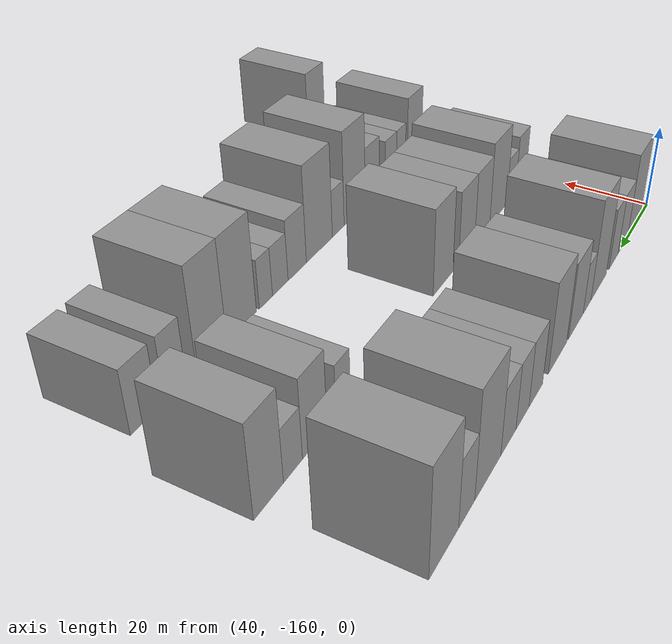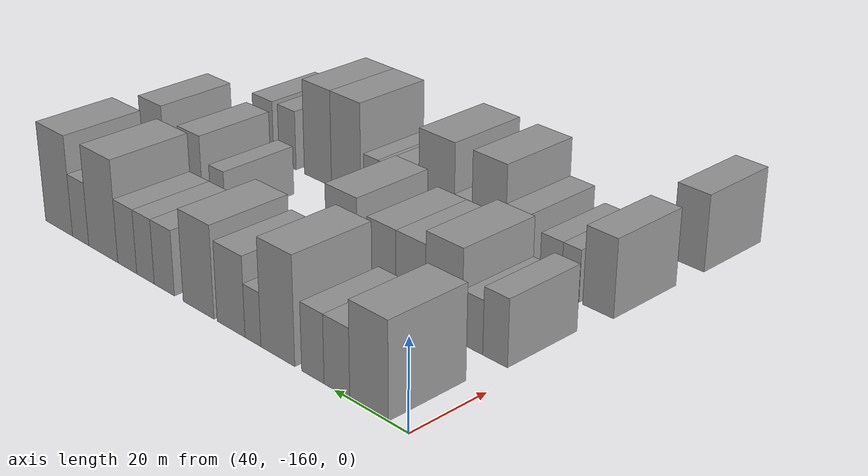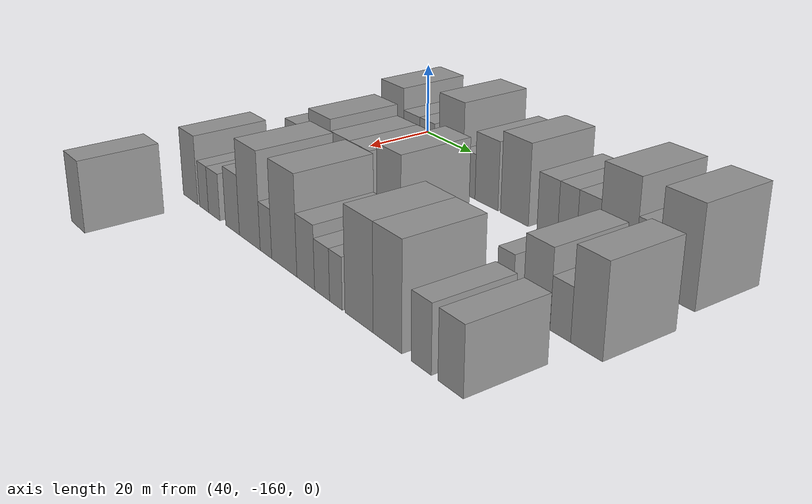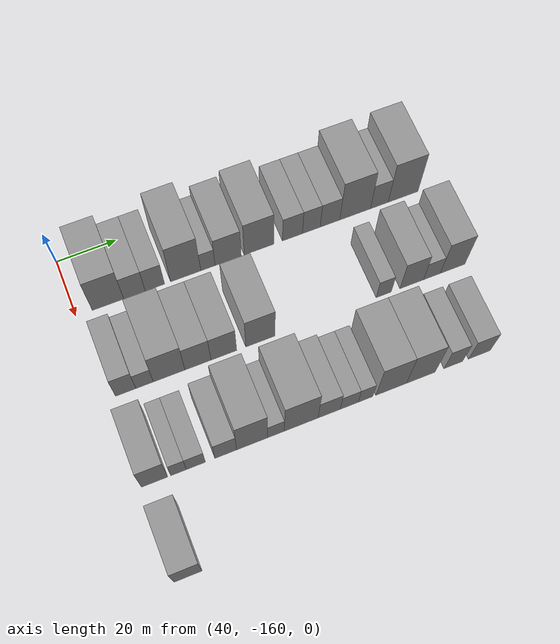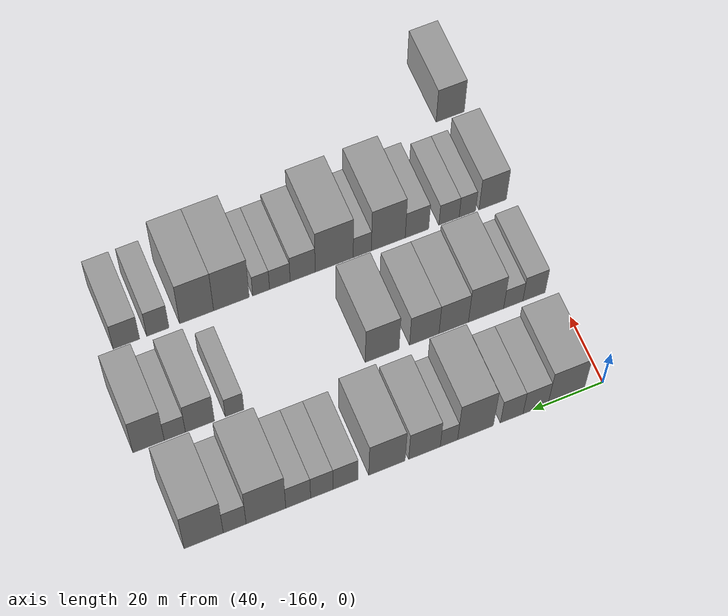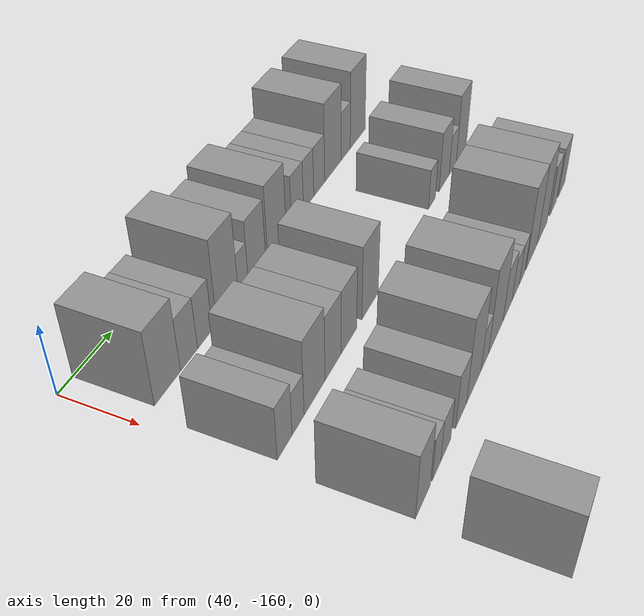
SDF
<sdf version="1.6">
 <world name="default">
  <model name="building_39">
   <static>1</static>
   <pose>50.0000 -149.4049 0 0.000000 0.000000 0.000000</pose>
   <link name="link">
    <pose>0 0 10.50 0 0 0</pose>
    <collision name="collision"><geometry><box><size>20.0000 10.3349 21.0000</size></box></geometry></collision>
    <visual name="visual">
     <cast_shadows>0</cast_shadows>
     <geometry><box><size>20.0000 10.3349 21.0000</size></box></geometry>
     <material>
      <script>
       <uri>model://grey_wall/materials/scripts</uri>
       <uri>model://grey_wall/materials/textures</uri>
       <name>vrc/grey_wall</name>
      </script>
     </material>
    </visual>
   </link>
  </model>
  <model name="building_40">
   <static>1</static>
   <pose>50.0000 -140.6643 0 0.000000 0.000000 0.000000</pose>
   <link name="link">
    <pose>0 0 7.50 0 0 0</pose>
    <collision name="collision"><geometry><box><size>20.0000 7.1463 15.0000</size></box></geometry></collision>
    <visual name="visual">
     <cast_shadows>0</cast_shadows>
     <geometry><box><size>20.0000 7.1463 15.0000</size></box></geometry>
     <material>
      <script>
       <uri>model://grey_wall/materials/scripts</uri>
       <uri>model://grey_wall/materials/textures</uri>
       <name>vrc/grey_wall</name>
      </script>
     </material>
    </visual>
   </link>
  </model>
  <model name="building_41">
   <static>1</static>
   <pose>50.0000 -133.8740 0 0.000000 0.000000 0.000000</pose>
   <link name="link">
    <pose>0 0 7.50 0 0 0</pose>
    <collision name="collision"><geometry><box><size>20.0000 6.4342 15.0000</size></box></geometry></collision>
    <visual name="visual">
     <cast_shadows>0</cast_shadows>
     <geometry><box><size>20.0000 6.4342 15.0000</size></box></geometry>
     <material>
      <script>
       <uri>model://grey_wall/materials/scripts</uri>
       <uri>model://grey_wall/materials/textures</uri>
       <name>vrc/grey_wall</name>
      </script>
     </material>
    </visual>
   </link>
  </model>
  <model name="building_42">
   <static>1</static>
   <pose>50.0000 -123.5805 0 0.000000 0.000000 0.000000</pose>
   <link name="link">
    <pose>0 0 12.00 0 0 0</pose>
    <collision name="collision"><geometry><box><size>20.0000 10.1528 24.0000</size></box></geometry></collision>
    <visual name="visual">
     <cast_shadows>0</cast_shadows>
     <geometry><box><size>20.0000 10.1528 24.0000</size></box></geometry>
     <material>
      <script>
       <uri>model://grey_wall/materials/scripts</uri>
       <uri>model://grey_wall/materials/textures</uri>
       <name>vrc/grey_wall</name>
      </script>
     </material>
    </visual>
   </link>
  </model>
  <model name="building_43">
   <static>1</static>
   <pose>50.0000 -116.0681 0 0.000000 0.000000 0.000000</pose>
   <link name="link">
    <pose>0 0 6.00 0 0 0</pose>
    <collision name="collision"><geometry><box><size>20.0000 4.8721 12.0000</size></box></geometry></collision>
    <visual name="visual">
     <cast_shadows>0</cast_shadows>
     <geometry><box><size>20.0000 4.8721 12.0000</size></box></geometry>
     <material>
      <script>
       <uri>model://grey_wall/materials/scripts</uri>
       <uri>model://grey_wall/materials/textures</uri>
       <name>vrc/grey_wall</name>
      </script>
     </material>
    </visual>
   </link>
  </model>
  <model name="building_44">
   <static>1</static>
   <pose>50.0000 -109.1987 0 0.000000 0.000000 0.000000</pose>
   <link name="link">
    <pose>0 0 9.00 0 0 0</pose>
    <collision name="collision"><geometry><box><size>20.0000 8.8667 18.0000</size></box></geometry></collision>
    <visual name="visual">
     <cast_shadows>0</cast_shadows>
     <geometry><box><size>20.0000 8.8667 18.0000</size></box></geometry>
     <material>
      <script>
       <uri>model://grey_wall/materials/scripts</uri>
       <uri>model://grey_wall/materials/textures</uri>
       <name>vrc/grey_wall</name>
      </script>
     </material>
    </visual>
   </link>
  </model>
  <model name="building_45">
   <static>1</static>
   <pose>50.0000 -98.6974 0 0.000000 0.000000 0.000000</pose>
   <link name="link">
    <pose>0 0 10.50 0 0 0</pose>
    <collision name="collision"><geometry><box><size>20.0000 10.1359 21.0000</size></box></geometry></collision>
    <visual name="visual">
     <cast_shadows>0</cast_shadows>
     <geometry><box><size>20.0000 10.1359 21.0000</size></box></geometry>
     <material>
      <script>
       <uri>model://grey_wall/materials/scripts</uri>
       <uri>model://grey_wall/materials/textures</uri>
       <name>vrc/grey_wall</name>
      </script>
     </material>
    </visual>
   </link>
  </model>
  <model name="building_46">
   <static>1</static>
   <pose>50.0000 -87.1655 0 0.000000 0.000000 0.000000</pose>
   <link name="link">
    <pose>0 0 7.50 0 0 0</pose>
    <collision name="collision"><geometry><box><size>20.0000 6.9278 15.0000</size></box></geometry></collision>
    <visual name="visual">
     <cast_shadows>0</cast_shadows>
     <geometry><box><size>20.0000 6.9278 15.0000</size></box></geometry>
     <material>
      <script>
       <uri>model://grey_wall/materials/scripts</uri>
       <uri>model://grey_wall/materials/textures</uri>
       <name>vrc/grey_wall</name>
      </script>
     </material>
    </visual>
   </link>
  </model>
  <model name="building_47">
   <static>1</static>
   <pose>50.0000 -80.6091 0 0.000000 0.000000 0.000000</pose>
   <link name="link">
    <pose>0 0 7.50 0 0 0</pose>
    <collision name="collision"><geometry><box><size>20.0000 6.1850 15.0000</size></box></geometry></collision>
    <visual name="visual">
     <cast_shadows>0</cast_shadows>
     <geometry><box><size>20.0000 6.1850 15.0000</size></box></geometry>
     <material>
      <script>
       <uri>model://grey_wall/materials/scripts</uri>
       <uri>model://grey_wall/materials/textures</uri>
       <name>vrc/grey_wall</name>
      </script>
     </material>
    </visual>
   </link>
  </model>
  <model name="building_48">
   <static>1</static>
   <pose>50.0000 -74.0983 0 0.000000 0.000000 0.000000</pose>
   <link name="link">
    <pose>0 0 7.50 0 0 0</pose>
    <collision name="collision"><geometry><box><size>20.0000 6.8367 15.0000</size></box></geometry></collision>
    <visual name="visual">
     <cast_shadows>0</cast_shadows>
     <geometry><box><size>20.0000 6.8367 15.0000</size></box></geometry>
     <material>
      <script>
       <uri>model://grey_wall/materials/scripts</uri>
       <uri>model://grey_wall/materials/textures</uri>
       <name>vrc/grey_wall</name>
      </script>
     </material>
    </visual>
   </link>
  </model>
  <model name="building_49">
   <static>1</static>
   <pose>50.0000 -65.2504 0 0.000000 0.000000 0.000000</pose>
   <link name="link">
    <pose>0 0 12.00 0 0 0</pose>
    <collision name="collision"><geometry><box><size>20.0000 10.8591 24.0000</size></box></geometry></collision>
    <visual name="visual">
     <cast_shadows>0</cast_shadows>
     <geometry><box><size>20.0000 10.8591 24.0000</size></box></geometry>
     <material>
      <script>
       <uri>model://grey_wall/materials/scripts</uri>
       <uri>model://grey_wall/materials/textures</uri>
       <name>vrc/grey_wall</name>
      </script>
     </material>
    </visual>
   </link>
  </model>
  <model name="building_50">
   <static>1</static>
   <pose>50.0000 -56.7006 0 0.000000 0.000000 0.000000</pose>
   <link name="link">
    <pose>0 0 7.50 0 0 0</pose>
    <collision name="collision"><geometry><box><size>20.0000 6.2407 15.0000</size></box></geometry></collision>
    <visual name="visual">
     <cast_shadows>0</cast_shadows>
     <geometry><box><size>20.0000 6.2407 15.0000</size></box></geometry>
     <material>
      <script>
       <uri>model://grey_wall/materials/scripts</uri>
       <uri>model://grey_wall/materials/textures</uri>
       <name>vrc/grey_wall</name>
      </script>
     </material>
    </visual>
   </link>
  </model>
  <model name="building_51">
   <static>1</static>
   <pose>50.0000 -48.2605 0 0.000000 0.000000 0.000000</pose>
   <link name="link">
    <pose>0 0 12.00 0 0 0</pose>
    <collision name="collision"><geometry><box><size>20.0000 10.6394 24.0000</size></box></geometry></collision>
    <visual name="visual">
     <cast_shadows>0</cast_shadows>
     <geometry><box><size>20.0000 10.6394 24.0000</size></box></geometry>
     <material>
      <script>
       <uri>model://grey_wall/materials/scripts</uri>
       <uri>model://grey_wall/materials/textures</uri>
       <name>vrc/grey_wall</name>
      </script>
     </material>
    </visual>
   </link>
  </model>
  <model name="building_153">
   <static>1</static>
   <pose>79.0000 -153.5303 0 0.000000 0.000000 0.000000</pose>
   <link name="link">
    <pose>0 0 7.50 0 0 0</pose>
    <collision name="collision"><geometry><box><size>20.0000 6.5317 15.0000</size></box></geometry></collision>
    <visual name="visual">
     <cast_shadows>0</cast_shadows>
     <geometry><box><size>20.0000 6.5317 15.0000</size></box></geometry>
     <material>
      <script>
       <uri>model://grey_wall/materials/scripts</uri>
       <uri>model://grey_wall/materials/textures</uri>
       <name>vrc/grey_wall</name>
      </script>
     </material>
    </visual>
   </link>
  </model>
  <model name="building_154">
   <static>1</static>
   <pose>79.0000 -147.4696 0 0.000000 0.000000 0.000000</pose>
   <link name="link">
    <pose>0 0 6.00 0 0 0</pose>
    <collision name="collision"><geometry><box><size>20.0000 5.5898 12.0000</size></box></geometry></collision>
    <visual name="visual">
     <cast_shadows>0</cast_shadows>
     <geometry><box><size>20.0000 5.5898 12.0000</size></box></geometry>
     <material>
      <script>
       <uri>model://grey_wall/materials/scripts</uri>
       <uri>model://grey_wall/materials/textures</uri>
       <name>vrc/grey_wall</name>
      </script>
     </material>
    </visual>
   </link>
  </model>
  <model name="building_155">
   <static>1</static>
   <pose>79.0000 -139.5721 0 0.000000 0.000000 0.000000</pose>
   <link name="link">
    <pose>0 0 10.50 0 0 0</pose>
    <collision name="collision"><geometry><box><size>20.0000 10.2052 21.0000</size></box></geometry></collision>
    <visual name="visual">
     <cast_shadows>0</cast_shadows>
     <geometry><box><size>20.0000 10.2052 21.0000</size></box></geometry>
     <material>
      <script>
       <uri>model://grey_wall/materials/scripts</uri>
       <uri>model://grey_wall/materials/textures</uri>
       <name>vrc/grey_wall</name>
      </script>
     </material>
    </visual>
   </link>
  </model>
  <model name="building_156">
   <static>1</static>
   <pose>79.0000 -130.2316 0 0.000000 0.000000 0.000000</pose>
   <link name="link">
    <pose>0 0 9.00 0 0 0</pose>
    <collision name="collision"><geometry><box><size>20.0000 8.4758 18.0000</size></box></geometry></collision>
    <visual name="visual">
     <cast_shadows>0</cast_shadows>
     <geometry><box><size>20.0000 8.4758 18.0000</size></box></geometry>
     <material>
      <script>
       <uri>model://grey_wall/materials/scripts</uri>
       <uri>model://grey_wall/materials/textures</uri>
       <name>vrc/grey_wall</name>
      </script>
     </material>
    </visual>
   </link>
  </model>
  <model name="building_157">
   <static>1</static>
   <pose>79.0000 -121.7674 0 0.000000 0.000000 0.000000</pose>
   <link name="link">
    <pose>0 0 9.00 0 0 0</pose>
    <collision name="collision"><geometry><box><size>20.0000 8.4525 18.0000</size></box></geometry></collision>
    <visual name="visual">
     <cast_shadows>0</cast_shadows>
     <geometry><box><size>20.0000 8.4525 18.0000</size></box></geometry>
     <material>
      <script>
       <uri>model://grey_wall/materials/scripts</uri>
       <uri>model://grey_wall/materials/textures</uri>
       <name>vrc/grey_wall</name>
      </script>
     </material>
    </visual>
   </link>
  </model>
  <model name="building_158">
   <static>1</static>
   <pose>79.0000 -109.7116 0 0.000000 0.000000 0.000000</pose>
   <link name="link">
    <pose>0 0 10.50 0 0 0</pose>
    <collision name="collision"><geometry><box><size>20.0000 9.6591 21.0000</size></box></geometry></collision>
    <visual name="visual">
     <cast_shadows>0</cast_shadows>
     <geometry><box><size>20.0000 9.6591 21.0000</size></box></geometry>
     <material>
      <script>
       <uri>model://grey_wall/materials/scripts</uri>
       <uri>model://grey_wall/materials/textures</uri>
       <name>vrc/grey_wall</name>
      </script>
     </material>
    </visual>
   </link>
  </model>
  <model name="building_159">
   <static>1</static>
   <pose>79.0000 -68.0960 0 0.000000 0.000000 0.000000</pose>
   <link name="link">
    <pose>0 0 6.00 0 0 0</pose>
    <collision name="collision"><geometry><box><size>20.0000 5.1907 12.0000</size></box></geometry></collision>
    <visual name="visual">
     <cast_shadows>0</cast_shadows>
     <geometry><box><size>20.0000 5.1907 12.0000</size></box></geometry>
     <material>
      <script>
       <uri>model://grey_wall/materials/scripts</uri>
       <uri>model://grey_wall/materials/textures</uri>
       <name>vrc/grey_wall</name>
      </script>
     </material>
    </visual>
   </link>
  </model>
  <model name="building_160">
   <static>1</static>
   <pose>79.0000 -58.4691 0 0.000000 0.000000 0.000000</pose>
   <link name="link">
    <pose>0 0 9.00 0 0 0</pose>
    <collision name="collision"><geometry><box><size>20.0000 8.0632 18.0000</size></box></geometry></collision>
    <visual name="visual">
     <cast_shadows>0</cast_shadows>
     <geometry><box><size>20.0000 8.0632 18.0000</size></box></geometry>
     <material>
      <script>
       <uri>model://grey_wall/materials/scripts</uri>
       <uri>model://grey_wall/materials/textures</uri>
       <name>vrc/grey_wall</name>
      </script>
     </material>
    </visual>
   </link>
  </model>
  <model name="building_161">
   <static>1</static>
   <pose>79.0000 -51.5164 0 0.000000 0.000000 0.000000</pose>
   <link name="link">
    <pose>0 0 6.00 0 0 0</pose>
    <collision name="collision"><geometry><box><size>20.0000 5.8422 12.0000</size></box></geometry></collision>
    <visual name="visual">
     <cast_shadows>0</cast_shadows>
     <geometry><box><size>20.0000 5.8422 12.0000</size></box></geometry>
     <material>
      <script>
       <uri>model://grey_wall/materials/scripts</uri>
       <uri>model://grey_wall/materials/textures</uri>
       <name>vrc/grey_wall</name>
      </script>
     </material>
    </visual>
   </link>
  </model>
  <model name="building_162">
   <static>1</static>
   <pose>79.0000 -44.2681 0 0.000000 0.000000 0.000000</pose>
   <link name="link">
    <pose>0 0 10.50 0 0 0</pose>
    <collision name="collision"><geometry><box><size>20.0000 8.6544 21.0000</size></box></geometry></collision>
    <visual name="visual">
     <cast_shadows>0</cast_shadows>
     <geometry><box><size>20.0000 8.6544 21.0000</size></box></geometry>
     <material>
      <script>
       <uri>model://grey_wall/materials/scripts</uri>
       <uri>model://grey_wall/materials/textures</uri>
       <name>vrc/grey_wall</name>
      </script>
     </material>
    </visual>
   </link>
  </model>
  <model name="building_258">
   <static>1</static>
   <pose>108.0000 -154.5478 0 0.000000 0.000000 0.000000</pose>
   <link name="link">
    <pose>0 0 9.00 0 0 0</pose>
    <collision name="collision"><geometry><box><size>20.0000 8.1169 18.0000</size></box></geometry></collision>
    <visual name="visual">
     <cast_shadows>0</cast_shadows>
     <geometry><box><size>20.0000 8.1169 18.0000</size></box></geometry>
     <material>
      <script>
       <uri>model://grey_wall/materials/scripts</uri>
       <uri>model://grey_wall/materials/textures</uri>
       <name>vrc/grey_wall</name>
      </script>
     </material>
    </visual>
   </link>
  </model>
  <model name="building_259">
   <static>1</static>
   <pose>108.0000 -147.0676 0 0.000000 0.000000 0.000000</pose>
   <link name="link">
    <pose>0 0 6.00 0 0 0</pose>
    <collision name="collision"><geometry><box><size>20.0000 4.8435 12.0000</size></box></geometry></collision>
    <visual name="visual">
     <cast_shadows>0</cast_shadows>
     <geometry><box><size>20.0000 4.8435 12.0000</size></box></geometry>
     <material>
      <script>
       <uri>model://grey_wall/materials/scripts</uri>
       <uri>model://grey_wall/materials/textures</uri>
       <name>vrc/grey_wall</name>
      </script>
     </material>
    </visual>
   </link>
  </model>
  <model name="building_260">
   <static>1</static>
   <pose>108.0000 -141.6626 0 0.000000 0.000000 0.000000</pose>
   <link name="link">
    <pose>0 0 6.00 0 0 0</pose>
    <collision name="collision"><geometry><box><size>20.0000 5.9664 12.0000</size></box></geometry></collision>
    <visual name="visual">
     <cast_shadows>0</cast_shadows>
     <geometry><box><size>20.0000 5.9664 12.0000</size></box></geometry>
     <material>
      <script>
       <uri>model://grey_wall/materials/scripts</uri>
       <uri>model://grey_wall/materials/textures</uri>
       <name>vrc/grey_wall</name>
      </script>
     </material>
    </visual>
   </link>
  </model>
  <model name="building_261">
   <static>1</static>
   <pose>108.0000 -132.2307 0 0.000000 0.000000 0.000000</pose>
   <link name="link">
    <pose>0 0 7.50 0 0 0</pose>
    <collision name="collision"><geometry><box><size>20.0000 6.8974 15.0000</size></box></geometry></collision>
    <visual name="visual">
     <cast_shadows>0</cast_shadows>
     <geometry><box><size>20.0000 6.8974 15.0000</size></box></geometry>
     <material>
      <script>
       <uri>model://grey_wall/materials/scripts</uri>
       <uri>model://grey_wall/materials/textures</uri>
       <name>vrc/grey_wall</name>
      </script>
     </material>
    </visual>
   </link>
  </model>
  <model name="building_262">
   <static>1</static>
   <pose>108.0000 -123.8345 0 0.000000 0.000000 0.000000</pose>
   <link name="link">
    <pose>0 0 12.00 0 0 0</pose>
    <collision name="collision"><geometry><box><size>20.0000 9.8950 24.0000</size></box></geometry></collision>
    <visual name="visual">
     <cast_shadows>0</cast_shadows>
     <geometry><box><size>20.0000 9.8950 24.0000</size></box></geometry>
     <material>
      <script>
       <uri>model://grey_wall/materials/scripts</uri>
       <uri>model://grey_wall/materials/textures</uri>
       <name>vrc/grey_wall</name>
      </script>
     </material>
    </visual>
   </link>
  </model>
  <model name="building_263">
   <static>1</static>
   <pose>108.0000 -116.2601 0 0.000000 0.000000 0.000000</pose>
   <link name="link">
    <pose>0 0 6.00 0 0 0</pose>
    <collision name="collision"><geometry><box><size>20.0000 5.2538 12.0000</size></box></geometry></collision>
    <visual name="visual">
     <cast_shadows>0</cast_shadows>
     <geometry><box><size>20.0000 5.2538 12.0000</size></box></geometry>
     <material>
      <script>
       <uri>model://grey_wall/materials/scripts</uri>
       <uri>model://grey_wall/materials/textures</uri>
       <name>vrc/grey_wall</name>
      </script>
     </material>
    </visual>
   </link>
  </model>
  <model name="building_264">
   <static>1</static>
   <pose>108.0000 -108.1545 0 0.000000 0.000000 0.000000</pose>
   <link name="link">
    <pose>0 0 12.00 0 0 0</pose>
    <collision name="collision"><geometry><box><size>20.0000 10.9574 24.0000</size></box></geometry></collision>
    <visual name="visual">
     <cast_shadows>0</cast_shadows>
     <geometry><box><size>20.0000 10.9574 24.0000</size></box></geometry>
     <material>
      <script>
       <uri>model://grey_wall/materials/scripts</uri>
       <uri>model://grey_wall/materials/textures</uri>
       <name>vrc/grey_wall</name>
      </script>
     </material>
    </visual>
   </link>
  </model>
  <model name="building_265">
   <static>1</static>
   <pose>108.0000 -99.0480 0 0.000000 0.000000 0.000000</pose>
   <link name="link">
    <pose>0 0 7.50 0 0 0</pose>
    <collision name="collision"><geometry><box><size>20.0000 7.2558 15.0000</size></box></geometry></collision>
    <visual name="visual">
     <cast_shadows>0</cast_shadows>
     <geometry><box><size>20.0000 7.2558 15.0000</size></box></geometry>
     <material>
      <script>
       <uri>model://grey_wall/materials/scripts</uri>
       <uri>model://grey_wall/materials/textures</uri>
       <name>vrc/grey_wall</name>
      </script>
     </material>
    </visual>
   </link>
  </model>
  <model name="building_266">
   <static>1</static>
   <pose>108.0000 -92.4656 0 0.000000 0.000000 0.000000</pose>
   <link name="link">
    <pose>0 0 6.00 0 0 0</pose>
    <collision name="collision"><geometry><box><size>20.0000 5.9089 12.0000</size></box></geometry></collision>
    <visual name="visual">
     <cast_shadows>0</cast_shadows>
     <geometry><box><size>20.0000 5.9089 12.0000</size></box></geometry>
     <material>
      <script>
       <uri>model://grey_wall/materials/scripts</uri>
       <uri>model://grey_wall/materials/textures</uri>
       <name>vrc/grey_wall</name>
      </script>
     </material>
    </visual>
   </link>
  </model>
  <model name="building_267">
   <static>1</static>
   <pose>108.0000 -87.1014 0 0.000000 0.000000 0.000000</pose>
   <link name="link">
    <pose>0 0 6.00 0 0 0</pose>
    <collision name="collision"><geometry><box><size>20.0000 4.8195 12.0000</size></box></geometry></collision>
    <visual name="visual">
     <cast_shadows>0</cast_shadows>
     <geometry><box><size>20.0000 4.8195 12.0000</size></box></geometry>
     <material>
      <script>
       <uri>model://grey_wall/materials/scripts</uri>
       <uri>model://grey_wall/materials/textures</uri>
       <name>vrc/grey_wall</name>
      </script>
     </material>
    </visual>
   </link>
  </model>
  <model name="building_268">
   <static>1</static>
   <pose>108.0000 -78.6225 0 0.000000 0.000000 0.000000</pose>
   <link name="link">
    <pose>0 0 12.00 0 0 0</pose>
    <collision name="collision"><geometry><box><size>20.0000 10.1384 24.0000</size></box></geometry></collision>
    <visual name="visual">
     <cast_shadows>0</cast_shadows>
     <geometry><box><size>20.0000 10.1384 24.0000</size></box></geometry>
     <material>
      <script>
       <uri>model://grey_wall/materials/scripts</uri>
       <uri>model://grey_wall/materials/textures</uri>
       <name>vrc/grey_wall</name>
      </script>
     </material>
    </visual>
   </link>
  </model>
  <model name="building_269">
   <static>1</static>
   <pose>108.0000 -68.7360 0 0.000000 0.000000 0.000000</pose>
   <link name="link">
    <pose>0 0 12.00 0 0 0</pose>
    <collision name="collision"><geometry><box><size>20.0000 9.6346 24.0000</size></box></geometry></collision>
    <visual name="visual">
     <cast_shadows>0</cast_shadows>
     <geometry><box><size>20.0000 9.6346 24.0000</size></box></geometry>
     <material>
      <script>
       <uri>model://grey_wall/materials/scripts</uri>
       <uri>model://grey_wall/materials/textures</uri>
       <name>vrc/grey_wall</name>
      </script>
     </material>
    </visual>
   </link>
  </model>
  <model name="building_270">
   <static>1</static>
   <pose>108.0000 -57.7810 0 0.000000 0.000000 0.000000</pose>
   <link name="link">
    <pose>0 0 7.50 0 0 0</pose>
    <collision name="collision"><geometry><box><size>20.0000 6.2753 15.0000</size></box></geometry></collision>
    <visual name="visual">
     <cast_shadows>0</cast_shadows>
     <geometry><box><size>20.0000 6.2753 15.0000</size></box></geometry>
     <material>
      <script>
       <uri>model://grey_wall/materials/scripts</uri>
       <uri>model://grey_wall/materials/textures</uri>
       <name>vrc/grey_wall</name>
      </script>
     </material>
    </visual>
   </link>
  </model>
  <model name="building_271">
   <static>1</static>
   <pose>108.0000 -48.9227 0 0.000000 0.000000 0.000000</pose>
   <link name="link">
    <pose>0 0 7.50 0 0 0</pose>
    <collision name="collision"><geometry><box><size>20.0000 7.4414 15.0000</size></box></geometry></collision>
    <visual name="visual">
     <cast_shadows>0</cast_shadows>
     <geometry><box><size>20.0000 7.4414 15.0000</size></box></geometry>
     <material>
      <script>
       <uri>model://grey_wall/materials/scripts</uri>
       <uri>model://grey_wall/materials/textures</uri>
       <name>vrc/grey_wall</name>
      </script>
     </material>
    </visual>
   </link>
  </model>
  <model name="building_363">
   <static>1</static>
   <pose>137.0000 -154.7800 0 0.000000 0.000000 0.000000</pose>
   <link name="link">
    <pose>0 0 9.00 0 0 0</pose>
    <collision name="collision"><geometry><box><size>20.0000 8.4828 18.0000</size></box></geometry></collision>
    <visual name="visual">
     <cast_shadows>0</cast_shadows>
     <geometry><box><size>20.0000 8.4828 18.0000</size></box></geometry>
     <material>
      <script>
       <uri>model://grey_wall/materials/scripts</uri>
       <uri>model://grey_wall/materials/textures</uri>
       <name>vrc/grey_wall</name>
      </script>
     </material>
    </visual>
   </link>
  </model>
 </world>
</sdf>
